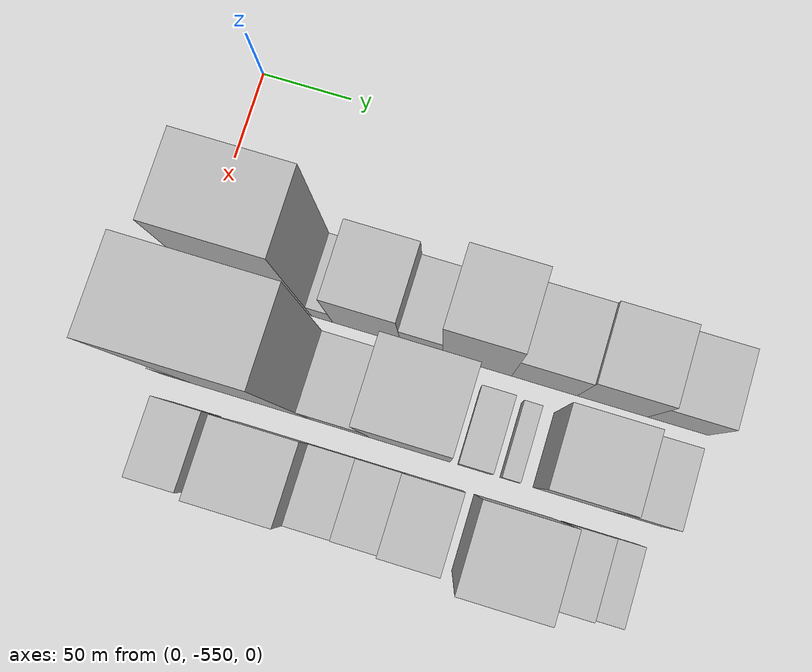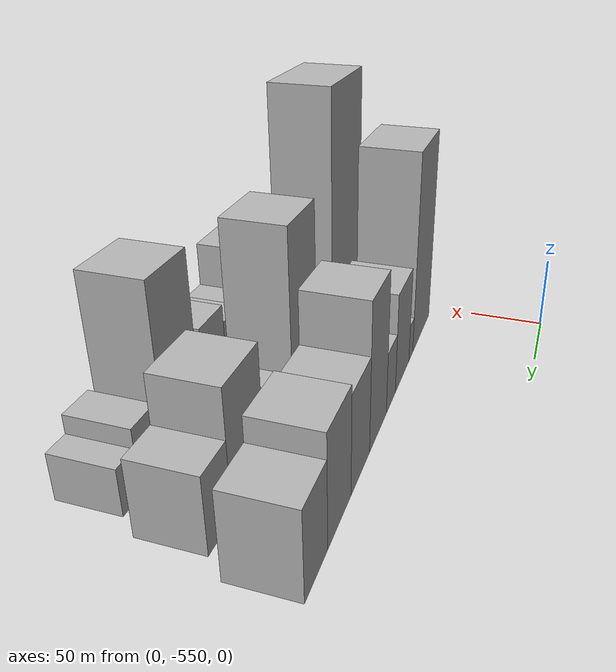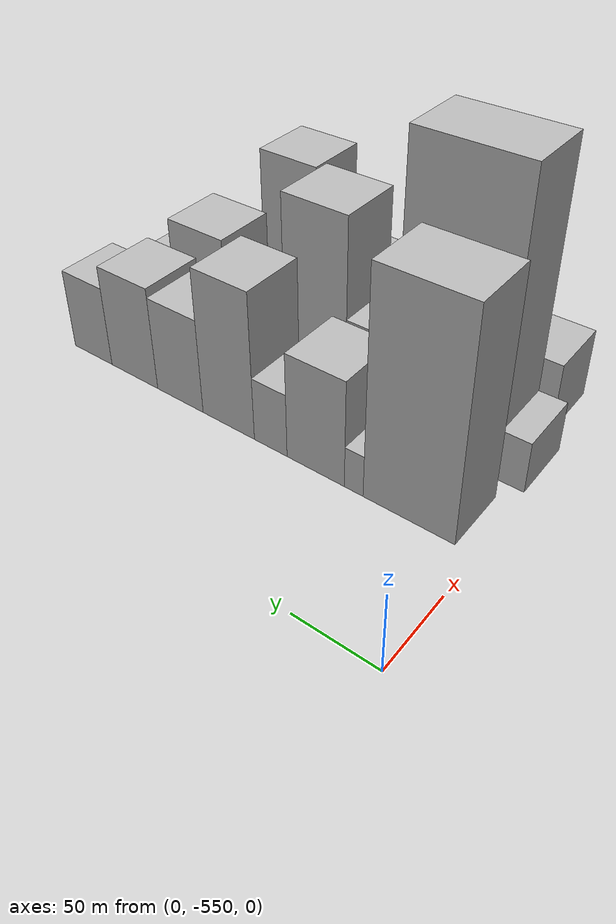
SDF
<sdf version="1.6">
 <world name="default">
  <model name="building_1">
   <static>1</static>
   <pose>100.0000 -510.8709 0 0.000000 0.000000 0.000000</pose>
   <link name="link">
    <pose>0 0 70.50 0 0 0</pose>
    <collision name="collision"><geometry><box><size>40.0000 54.2581 141.0000</size></box></geometry></collision>
    <visual name="visual">
     <cast_shadows>0</cast_shadows>
     <geometry><box><size>40.0000 54.2581 141.0000</size></box></geometry>
     <material>
      <script>
       <uri>model://HANNAS_wall/materials/scripts</uri>
       <uri>model://HANNAS_wall/materials/textures</uri>
       <name>vrc/HANNAS_wall</name>
      </script>
     </material>
    </visual>
   </link>
  </model>
  <model name="building_2">
   <static>1</static>
   <pose>100.0000 -477.8455 0 0.000000 0.000000 0.000000</pose>
   <link name="link">
    <pose>0 0 13.50 0 0 0</pose>
    <collision name="collision"><geometry><box><size>40.0000 11.7927 27.0000</size></box></geometry></collision>
    <visual name="visual">
     <cast_shadows>0</cast_shadows>
     <geometry><box><size>40.0000 11.7927 27.0000</size></box></geometry>
     <material>
      <script>
       <uri>model://HANNAS_wall/materials/scripts</uri>
       <uri>model://HANNAS_wall/materials/textures</uri>
       <name>vrc/HANNAS_wall</name>
      </script>
     </material>
    </visual>
   </link>
  </model>
  <model name="building_3">
   <static>1</static>
   <pose>100.0000 -453.1120 0 0.000000 0.000000 0.000000</pose>
   <link name="link">
    <pose>0 0 34.50 0 0 0</pose>
    <collision name="collision"><geometry><box><size>40.0000 37.6744 69.0000</size></box></geometry></collision>
    <visual name="visual">
     <cast_shadows>0</cast_shadows>
     <geometry><box><size>40.0000 37.6744 69.0000</size></box></geometry>
     <material>
      <script>
       <uri>model://HANNAS_wall/materials/scripts</uri>
       <uri>model://HANNAS_wall/materials/textures</uri>
       <name>vrc/HANNAS_wall</name>
      </script>
     </material>
    </visual>
   </link>
  </model>
  <model name="building_4">
   <static>1</static>
   <pose>100.0000 -422.9121 0 0.000000 0.000000 0.000000</pose>
   <link name="link">
    <pose>0 0 21.00 0 0 0</pose>
    <collision name="collision"><geometry><box><size>40.0000 22.7253 42.0000</size></box></geometry></collision>
    <visual name="visual">
     <cast_shadows>0</cast_shadows>
     <geometry><box><size>40.0000 22.7253 42.0000</size></box></geometry>
     <material>
      <script>
       <uri>model://HANNAS_wall/materials/scripts</uri>
       <uri>model://HANNAS_wall/materials/textures</uri>
       <name>vrc/HANNAS_wall</name>
      </script>
     </material>
    </visual>
   </link>
  </model>
  <model name="building_5">
   <static>1</static>
   <pose>100.0000 -392.6772 0 0.000000 0.000000 0.000000</pose>
   <link name="link">
    <pose>0 0 48.00 0 0 0</pose>
    <collision name="collision"><geometry><box><size>40.0000 37.7445 96.0000</size></box></geometry></collision>
    <visual name="visual">
     <cast_shadows>0</cast_shadows>
     <geometry><box><size>40.0000 37.7445 96.0000</size></box></geometry>
     <material>
      <script>
       <uri>model://HANNAS_wall/materials/scripts</uri>
       <uri>model://HANNAS_wall/materials/textures</uri>
       <name>vrc/HANNAS_wall</name>
      </script>
     </material>
    </visual>
   </link>
  </model>
  <model name="building_6">
   <static>1</static>
   <pose>100.0000 -356.0114 0 0.000000 0.000000 0.000000</pose>
   <link name="link">
    <pose>0 0 31.50 0 0 0</pose>
    <collision name="collision"><geometry><box><size>40.0000 35.5872 63.0000</size></box></geometry></collision>
    <visual name="visual">
     <cast_shadows>0</cast_shadows>
     <geometry><box><size>40.0000 35.5872 63.0000</size></box></geometry>
     <material>
      <script>
       <uri>model://HANNAS_wall/materials/scripts</uri>
       <uri>model://HANNAS_wall/materials/textures</uri>
       <name>vrc/HANNAS_wall</name>
      </script>
     </material>
    </visual>
   </link>
  </model>
  <model name="building_7">
   <static>1</static>
   <pose>100.0000 -319.1402 0 0.000000 0.000000 0.000000</pose>
   <link name="link">
    <pose>0 0 34.50 0 0 0</pose>
    <collision name="collision"><geometry><box><size>40.0000 38.1551 69.0000</size></box></geometry></collision>
    <visual name="visual">
     <cast_shadows>0</cast_shadows>
     <geometry><box><size>40.0000 38.1551 69.0000</size></box></geometry>
     <material>
      <script>
       <uri>model://HANNAS_wall/materials/scripts</uri>
       <uri>model://HANNAS_wall/materials/textures</uri>
       <name>vrc/HANNAS_wall</name>
      </script>
     </material>
    </visual>
   </link>
  </model>
  <model name="building_8">
   <static>1</static>
   <pose>100.0000 -283.8798 0 0.000000 0.000000 0.000000</pose>
   <link name="link">
    <pose>0 0 27.00 0 0 0</pose>
    <collision name="collision"><geometry><box><size>40.0000 32.3658 54.0000</size></box></geometry></collision>
    <visual name="visual">
     <cast_shadows>0</cast_shadows>
     <geometry><box><size>40.0000 32.3658 54.0000</size></box></geometry>
     <material>
      <script>
       <uri>model://HANNAS_wall/materials/scripts</uri>
       <uri>model://HANNAS_wall/materials/textures</uri>
       <name>vrc/HANNAS_wall</name>
      </script>
     </material>
    </visual>
   </link>
  </model>
  <model name="building_32">
   <static>1</static>
   <pose>152.0000 -539.6510 0 0.000000 0.000000 0.000000</pose>
   <link name="link">
    <pose>0 0 16.50 0 0 0</pose>
    <collision name="collision"><geometry><box><size>40.0000 16.6979 33.0000</size></box></geometry></collision>
    <visual name="visual">
     <cast_shadows>0</cast_shadows>
     <geometry><box><size>40.0000 16.6979 33.0000</size></box></geometry>
     <material>
      <script>
       <uri>model://HANNAS_wall/materials/scripts</uri>
       <uri>model://HANNAS_wall/materials/textures</uri>
       <name>vrc/HANNAS_wall</name>
      </script>
     </material>
    </visual>
   </link>
  </model>
  <model name="building_33">
   <static>1</static>
   <pose>152.0000 -499.0679 0 0.000000 0.000000 0.000000</pose>
   <link name="link">
    <pose>0 0 90.00 0 0 0</pose>
    <collision name="collision"><geometry><box><size>40.0000 64.4685 180.0000</size></box></geometry></collision>
    <visual name="visual">
     <cast_shadows>0</cast_shadows>
     <geometry><box><size>40.0000 64.4685 180.0000</size></box></geometry>
     <material>
      <script>
       <uri>model://HANNAS_wall/materials/scripts</uri>
       <uri>model://HANNAS_wall/materials/textures</uri>
       <name>vrc/HANNAS_wall</name>
      </script>
     </material>
    </visual>
   </link>
  </model>
  <model name="building_34">
   <static>1</static>
   <pose>152.0000 -450.8416 0 0.000000 0.000000 0.000000</pose>
   <link name="link">
    <pose>0 0 30.00 0 0 0</pose>
    <collision name="collision"><geometry><box><size>40.0000 31.9840 60.0000</size></box></geometry></collision>
    <visual name="visual">
     <cast_shadows>0</cast_shadows>
     <geometry><box><size>40.0000 31.9840 60.0000</size></box></geometry>
     <material>
      <script>
       <uri>model://HANNAS_wall/materials/scripts</uri>
       <uri>model://HANNAS_wall/materials/textures</uri>
       <name>vrc/HANNAS_wall</name>
      </script>
     </material>
    </visual>
   </link>
  </model>
  <model name="building_35">
   <static>1</static>
   <pose>152.0000 -413.2766 0 0.000000 0.000000 0.000000</pose>
   <link name="link">
    <pose>0 0 61.50 0 0 0</pose>
    <collision name="collision"><geometry><box><size>40.0000 43.1460 123.0000</size></box></geometry></collision>
    <visual name="visual">
     <cast_shadows>0</cast_shadows>
     <geometry><box><size>40.0000 43.1460 123.0000</size></box></geometry>
     <material>
      <script>
       <uri>model://HANNAS_wall/materials/scripts</uri>
       <uri>model://HANNAS_wall/materials/textures</uri>
       <name>vrc/HANNAS_wall</name>
      </script>
     </material>
    </visual>
   </link>
  </model>
  <model name="building_36">
   <static>1</static>
   <pose>152.0000 -378.8482 0 0.000000 0.000000 0.000000</pose>
   <link name="link">
    <pose>0 0 16.50 0 0 0</pose>
    <collision name="collision"><geometry><box><size>40.0000 17.7106 33.0000</size></box></geometry></collision>
    <visual name="visual">
     <cast_shadows>0</cast_shadows>
     <geometry><box><size>40.0000 17.7106 33.0000</size></box></geometry>
     <material>
      <script>
       <uri>model://HANNAS_wall/materials/scripts</uri>
       <uri>model://HANNAS_wall/materials/textures</uri>
       <name>vrc/HANNAS_wall</name>
      </script>
     </material>
    </visual>
   </link>
  </model>
  <model name="building_37">
   <static>1</static>
   <pose>152.0000 -360.1530 0 0.000000 0.000000 0.000000</pose>
   <link name="link">
    <pose>0 0 10.50 0 0 0</pose>
    <collision name="collision"><geometry><box><size>40.0000 9.6798 21.0000</size></box></geometry></collision>
    <visual name="visual">
     <cast_shadows>0</cast_shadows>
     <geometry><box><size>40.0000 9.6798 21.0000</size></box></geometry>
     <material>
      <script>
       <uri>model://HANNAS_wall/materials/scripts</uri>
       <uri>model://HANNAS_wall/materials/textures</uri>
       <name>vrc/HANNAS_wall</name>
      </script>
     </material>
    </visual>
   </link>
  </model>
  <model name="building_38">
   <static>1</static>
   <pose>152.0000 -326.4027 0 0.000000 0.000000 0.000000</pose>
   <link name="link">
    <pose>0 0 39.00 0 0 0</pose>
    <collision name="collision"><geometry><box><size>40.0000 41.8208 78.0000</size></box></geometry></collision>
    <visual name="visual">
     <cast_shadows>0</cast_shadows>
     <geometry><box><size>40.0000 41.8208 78.0000</size></box></geometry>
     <material>
      <script>
       <uri>model://HANNAS_wall/materials/scripts</uri>
       <uri>model://HANNAS_wall/materials/textures</uri>
       <name>vrc/HANNAS_wall</name>
      </script>
     </material>
    </visual>
   </link>
  </model>
  <model name="building_39">
   <static>1</static>
   <pose>152.0000 -292.3527 0 0.000000 0.000000 0.000000</pose>
   <link name="link">
    <pose>0 0 24.00 0 0 0</pose>
    <collision name="collision"><geometry><box><size>40.0000 26.2792 48.0000</size></box></geometry></collision>
    <visual name="visual">
     <cast_shadows>0</cast_shadows>
     <geometry><box><size>40.0000 26.2792 48.0000</size></box></geometry>
     <material>
      <script>
       <uri>model://HANNAS_wall/materials/scripts</uri>
       <uri>model://HANNAS_wall/materials/textures</uri>
       <name>vrc/HANNAS_wall</name>
      </script>
     </material>
    </visual>
   </link>
  </model>
  <model name="building_65">
   <static>1</static>
   <pose>204.0000 -525.1050 0 0.000000 0.000000 0.000000</pose>
   <link name="link">
    <pose>0 0 22.50 0 0 0</pose>
    <collision name="collision"><geometry><box><size>40.0000 25.7899 45.0000</size></box></geometry></collision>
    <visual name="visual">
     <cast_shadows>0</cast_shadows>
     <geometry><box><size>40.0000 25.7899 45.0000</size></box></geometry>
     <material>
      <script>
       <uri>model://HANNAS_wall/materials/scripts</uri>
       <uri>model://HANNAS_wall/materials/textures</uri>
       <name>vrc/HANNAS_wall</name>
      </script>
     </material>
    </visual>
   </link>
  </model>
  <model name="building_66">
   <static>1</static>
   <pose>204.0000 -480.7575 0 0.000000 0.000000 0.000000</pose>
   <link name="link">
    <pose>0 0 36.00 0 0 0</pose>
    <collision name="collision"><geometry><box><size>40.0000 42.9052 72.0000</size></box></geometry></collision>
    <visual name="visual">
     <cast_shadows>0</cast_shadows>
     <geometry><box><size>40.0000 42.9052 72.0000</size></box></geometry>
     <material>
      <script>
       <uri>model://HANNAS_wall/materials/scripts</uri>
       <uri>model://HANNAS_wall/materials/textures</uri>
       <name>vrc/HANNAS_wall</name>
      </script>
     </material>
    </visual>
   </link>
  </model>
  <model name="building_67">
   <static>1</static>
   <pose>204.0000 -447.3721 0 0.000000 0.000000 0.000000</pose>
   <link name="link">
    <pose>0 0 21.00 0 0 0</pose>
    <collision name="collision"><geometry><box><size>40.0000 23.8655 42.0000</size></box></geometry></collision>
    <visual name="visual">
     <cast_shadows>0</cast_shadows>
     <geometry><box><size>40.0000 23.8655 42.0000</size></box></geometry>
     <material>
      <script>
       <uri>model://HANNAS_wall/materials/scripts</uri>
       <uri>model://HANNAS_wall/materials/textures</uri>
       <name>vrc/HANNAS_wall</name>
      </script>
     </material>
    </visual>
   </link>
  </model>
  <model name="building_68">
   <static>1</static>
   <pose>204.0000 -423.6258 0 0.000000 0.000000 0.000000</pose>
   <link name="link">
    <pose>0 0 22.50 0 0 0</pose>
    <collision name="collision"><geometry><box><size>40.0000 23.6272 45.0000</size></box></geometry></collision>
    <visual name="visual">
     <cast_shadows>0</cast_shadows>
     <geometry><box><size>40.0000 23.6272 45.0000</size></box></geometry>
     <material>
      <script>
       <uri>model://HANNAS_wall/materials/scripts</uri>
       <uri>model://HANNAS_wall/materials/textures</uri>
       <name>vrc/HANNAS_wall</name>
      </script>
     </material>
    </visual>
   </link>
  </model>
  <model name="building_69">
   <static>1</static>
   <pose>204.0000 -396.5264 0 0.000000 0.000000 0.000000</pose>
   <link name="link">
    <pose>0 0 28.50 0 0 0</pose>
    <collision name="collision"><geometry><box><size>40.0000 30.5715 57.0000</size></box></geometry></collision>
    <visual name="visual">
     <cast_shadows>0</cast_shadows>
     <geometry><box><size>40.0000 30.5715 57.0000</size></box></geometry>
     <material>
      <script>
       <uri>model://HANNAS_wall/materials/scripts</uri>
       <uri>model://HANNAS_wall/materials/textures</uri>
       <name>vrc/HANNAS_wall</name>
      </script>
     </material>
    </visual>
   </link>
  </model>
  <model name="building_70">
   <static>1</static>
   <pose>204.0000 -354.5407 0 0.000000 0.000000 0.000000</pose>
   <link name="link">
    <pose>0 0 55.50 0 0 0</pose>
    <collision name="collision"><geometry><box><size>40.0000 41.4001 111.0000</size></box></geometry></collision>
    <visual name="visual">
     <cast_shadows>0</cast_shadows>
     <geometry><box><size>40.0000 41.4001 111.0000</size></box></geometry>
     <material>
      <script>
       <uri>model://HANNAS_wall/materials/scripts</uri>
       <uri>model://HANNAS_wall/materials/textures</uri>
       <name>vrc/HANNAS_wall</name>
      </script>
     </material>
    </visual>
   </link>
  </model>
  <model name="building_71">
   <static>1</static>
   <pose>204.0000 -317.4267 0 0.000000 0.000000 0.000000</pose>
   <link name="link">
    <pose>0 0 21.00 0 0 0</pose>
    <collision name="collision"><geometry><box><size>40.0000 22.8278 42.0000</size></box></geometry></collision>
    <visual name="visual">
     <cast_shadows>0</cast_shadows>
     <geometry><box><size>40.0000 22.8278 42.0000</size></box></geometry>
     <material>
      <script>
       <uri>model://HANNAS_wall/materials/scripts</uri>
       <uri>model://HANNAS_wall/materials/textures</uri>
       <name>vrc/HANNAS_wall</name>
      </script>
     </material>
    </visual>
   </link>
  </model>
  <model name="building_72">
   <static>1</static>
   <pose>204.0000 -297.8018 0 0.000000 0.000000 0.000000</pose>
   <link name="link">
    <pose>0 0 15.00 0 0 0</pose>
    <collision name="collision"><geometry><box><size>40.0000 16.4220 30.0000</size></box></geometry></collision>
    <visual name="visual">
     <cast_shadows>0</cast_shadows>
     <geometry><box><size>40.0000 16.4220 30.0000</size></box></geometry>
     <material>
      <script>
       <uri>model://HANNAS_wall/materials/scripts</uri>
       <uri>model://HANNAS_wall/materials/textures</uri>
       <name>vrc/HANNAS_wall</name>
      </script>
     </material>
    </visual>
   </link>
  </model>
 </world>
</sdf>
